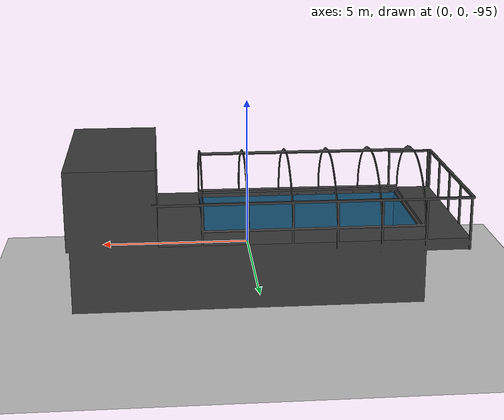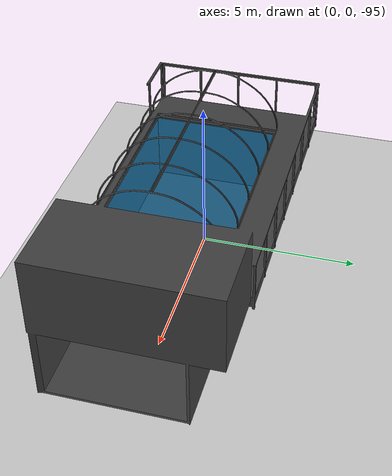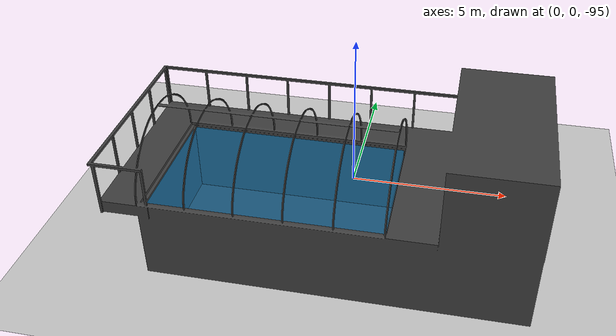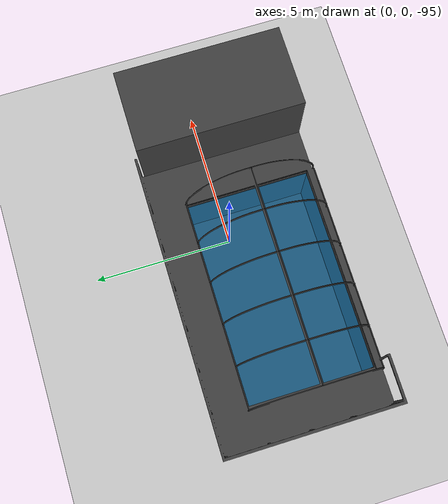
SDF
<?xml version="1.0" encoding="UTF-8"?>
<sdf version="1.9">
  <!-- Based on the KTH Water Tank Marinarium: https://www.kth.se/marinarium -->
  <world name="kth_marinarium">
    <physics type="ode">
      <max_step_size>0.004</max_step_size>
      <real_time_factor>1.0</real_time_factor>
      <real_time_update_rate>250</real_time_update_rate>
    </physics>
    <plugin name="gz::sim::systems::Physics" filename="gz-sim-physics-system"/>
    <plugin name="gz::sim::systems::UserCommands" filename="gz-sim-user-commands-system"/>
    <plugin name="gz::sim::systems::SceneBroadcaster" filename="gz-sim-scene-broadcaster-system"/>
    <plugin name="gz::sim::systems::Contact" filename="gz-sim-contact-system"/>
    <plugin name="gz::sim::systems::Imu" filename="gz-sim-imu-system"/>
    <plugin name="gz::sim::systems::AirPressure" filename="gz-sim-air-pressure-system"/>
    <plugin name="gz::sim::systems::AirSpeed" filename="gz-sim-air-speed-system"/>
    <plugin name="gz::sim::systems::ApplyLinkWrench" filename="gz-sim-apply-link-wrench-system"/>
    <plugin name="gz::sim::systems::NavSat" filename="gz-sim-navsat-system"/>
    <plugin name="gz::sim::systems::Sensors" filename="gz-sim-sensors-system">
      <render_engine>ogre2</render_engine>
    </plugin>
    <gui fullscreen="false">
      <!-- 3D scene -->
      <plugin filename="MinimalScene" name="3D View">
        <gz-gui>
          <title>3D View</title>
          <property type="bool" key="showTitleBar">false</property>
          <property type="string" key="state">docked</property>
        </gz-gui>
        <engine>ogre2</engine>
        <scene>scene</scene>
        <ambient_light>0.4 0.4 0.4</ambient_light>
        <background_color>0.8 0.8 0.8</background_color>
        <camera_pose>-6 0 6 0 0.5 0</camera_pose>
        <camera_clip>
          <near>0.25</near>
          <far>25000</far>
        </camera_clip>
      </plugin>
      <!-- Plugins that add functionality to the scene -->
      <plugin filename="EntityContextMenuPlugin" name="Entity context menu">
        <gz-gui>
          <property key="state" type="string">floating</property>
          <property key="width" type="double">5</property>
          <property key="height" type="double">5</property>
          <property key="showTitleBar" type="bool">false</property>
        </gz-gui>
      </plugin>
      <plugin filename="GzSceneManager" name="Scene Manager">
        <gz-gui>
          <property key="resizable" type="bool">false</property>
          <property key="width" type="double">5</property>
          <property key="height" type="double">5</property>
          <property key="state" type="string">floating</property>
          <property key="showTitleBar" type="bool">false</property>
        </gz-gui>
      </plugin>
      <plugin filename="InteractiveViewControl" name="Interactive view control">
        <gz-gui>
          <property key="resizable" type="bool">false</property>
          <property key="width" type="double">5</property>
          <property key="height" type="double">5</property>
          <property key="state" type="string">floating</property>
          <property key="showTitleBar" type="bool">false</property>
        </gz-gui>
      </plugin>
      <plugin filename="CameraTracking" name="Camera Tracking">
        <gz-gui>
          <property key="resizable" type="bool">false</property>
          <property key="width" type="double">5</property>
          <property key="height" type="double">5</property>
          <property key="state" type="string">floating</property>
          <property key="showTitleBar" type="bool">false</property>
        </gz-gui>
      </plugin>
      <plugin filename="MarkerManager" name="Marker manager">
        <gz-gui>
          <property key="resizable" type="bool">false</property>
          <property key="width" type="double">5</property>
          <property key="height" type="double">5</property>
          <property key="state" type="string">floating</property>
          <property key="showTitleBar" type="bool">false</property>
        </gz-gui>
      </plugin>
      <plugin filename="SelectEntities" name="Select Entities">
        <gz-gui>
          <anchors target="Select entities">
            <line own="right" target="right"/>
            <line own="top" target="top"/>
          </anchors>
          <property key="resizable" type="bool">false</property>
          <property key="width" type="double">5</property>
          <property key="height" type="double">5</property>
          <property key="state" type="string">floating</property>
          <property key="showTitleBar" type="bool">false</property>
        </gz-gui>
      </plugin>
      <plugin filename="VisualizationCapabilities" name="Visualization Capabilities">
        <gz-gui>
          <property key="resizable" type="bool">false</property>
          <property key="width" type="double">5</property>
          <property key="height" type="double">5</property>
          <property key="state" type="string">floating</property>
          <property key="showTitleBar" type="bool">false</property>
        </gz-gui>
      </plugin>
      <plugin filename="Spawn" name="Spawn Entities">
        <gz-gui>
          <anchors target="Select entities">
            <line own="right" target="right"/>
            <line own="top" target="top"/>
          </anchors>
          <property key="resizable" type="bool">false</property>
          <property key="width" type="double">5</property>
          <property key="height" type="double">5</property>
          <property key="state" type="string">floating</property>
          <property key="showTitleBar" type="bool">false</property>
        </gz-gui>
      </plugin>
      <plugin name="World control" filename="WorldControl">
        <gz-gui>
          <title>World control</title>
          <property type="bool" key="showTitleBar">0</property>
          <property type="bool" key="resizable">0</property>
          <property type="double" key="height">72</property>
          <property type="double" key="width">121</property>
          <property type="double" key="z">1</property>
          <property type="string" key="state">floating</property>
          <anchors target="3D View">
            <line own="left" target="left"/>
            <line own="bottom" target="bottom"/>
          </anchors>
        </gz-gui>
        <play_pause>1</play_pause>
        <step>1</step>
        <start_paused>1</start_paused>
      </plugin>
      <plugin name="World stats" filename="WorldStats">
        <gz-gui>
          <title>World stats</title>
          <property type="bool" key="showTitleBar">0</property>
          <property type="bool" key="resizable">0</property>
          <property type="double" key="height">110</property>
          <property type="double" key="width">290</property>
          <property type="double" key="z">1</property>
          <property type="string" key="state">floating</property>
          <anchors target="3D View">
            <line own="right" target="right"/>
            <line own="bottom" target="bottom"/>
          </anchors>
        </gz-gui>
        <sim_time>1</sim_time>
        <real_time>1</real_time>
        <real_time_factor>1</real_time_factor>
        <iterations>1</iterations>
      </plugin>
      <plugin name="Entity tree" filename="EntityTree"/>
    </gui>
    <gravity>0 0 -9.8</gravity>
    <magnetic_field>6e-06 2.3e-05 -4.2e-05</magnetic_field>
    <atmosphere type="adiabatic"/>
    <scene>
      <grid>false</grid>
      <ambient>0.4 0.4 0.4 1</ambient>
      <background>0.7 0.7 0.7 1</background>
      <shadows>true</shadows>
    </scene>
    <light name="sunUTC" type="directional">
      <pose>0 0 500 0 -0 0</pose>
      <cast_shadows>true</cast_shadows>
      <intensity>1</intensity>
      <direction>0.001 0.625 -0.78</direction>
      <diffuse>0.904 0.904 0.904 1</diffuse>
      <specular>0.271 0.271 0.271 1</specular>
      <attenuation>
        <range>2000</range>
        <linear>0</linear>
        <constant>1</constant>
        <quadratic>0</quadratic>
      </attenuation>
      <spot>
        <inner_angle>0</inner_angle>
        <outer_angle>0</outer_angle>
        <falloff>0</falloff>
      </spot>
    </light>
    <spherical_coordinates>
      <surface_model>EARTH_WGS84</surface_model>
      <world_frame_orientation>ENU</world_frame_orientation>
      <latitude_deg>59.350941</latitude_deg>
      <longitude_deg>18.06806</longitude_deg>
      <elevation>0</elevation>
    </spherical_coordinates>
    <!-- KTH Water Tank model -->
    <include>
      <uri>model://kth_tank</uri>
      <name>kth_tank</name>
      <pose>0 0 -97.0 0 0 0</pose>
      <static>true</static>
    </include>
    <!-- Ground plane to facilitate visibility -->
    <model name="ground_plane">
      <static>true</static>
      <pose>0 0 -97.0 0 0 0</pose>
      <link name="link">
        <collision name="collision">
          <geometry>
            <plane>
              <normal>0 0 1</normal>
              <size>200 200</size>
            </plane>
          </geometry>
        </collision>
        <visual name="visual">
          <geometry>
            <plane>
              <normal>0 0 1</normal>
              <size>200 200</size>
            </plane>
          </geometry>
          <material>
            <ambient>0.8 0.8 0.8 1</ambient>
            <diffuse>0.8 0.8 0.8 1</diffuse>
            <specular>0.1 0.1 0.1 1</specular>
          </material>
        </visual>
      </link>
    </model>
    <plugin filename="gz-sim-buoyancy-system" name="gz::sim::systems::Buoyancy">
      <graded_buoyancy>
        <default_density>1000</default_density>
        <!-- Tank water surface aligned with wall visual top (z=2.6) -->
        <density_change>
          <above_depth>-94.4</above_depth>
          <density>1</density>
        </density_change>
      </graded_buoyancy>
      <!-- Restrict buoyancy to just the robot link(s) -->
      <enable>uuv_bluerov2_heavy::base_link</enable>
      <!-- PX4 often spawns with a suffix like _0 -->
      <enable>uuv_bluerov2_heavy_0::base_link</enable>
    </plugin>
  </world>
</sdf>

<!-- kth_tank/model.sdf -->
<sdf version="1.6">
  <model name="kth_tank">
    <static>true</static>
    <pose>0 0 0 0 0 0</pose>

    <link name="tank_link">
      <!-- Visual representation using the OBJ mesh -->
      <visual name="visual">
        <pose>0 0 0 1.571 0 0</pose>
        <geometry>
          <mesh>
            <uri>model://kth_tank/meshes/kth_tank_complete.obj</uri>
            <scale>1 1 1</scale>
          </mesh>
        </geometry>
        <material>
          <!-- Dark grey -->
          <ambient>0.15 0.15 0.15 1</ambient>
          <diffuse>0.25 0.25 0.25 1</diffuse>
          <specular>0.05 0.05 0.05 1</specular>
        </material>
      </visual>

      <!-- Water volume visual -->
      <visual name="water_volume_visual">
        <pose>-2.175 -1.15 1.3 0 0 0</pose>
        <cast_shadows>false</cast_shadows>
        <geometry>
          <box>
            <size>7.4 4.55 2.55</size>
          </box>
        </geometry>
        <material>
          <ambient>0.0 0.3 0.5 1</ambient>
          <diffuse>0.0 0.5 0.8 1</diffuse>
          <specular>0.5 0.5 0.5 1</specular>
        </material>
        <transparency>0.5</transparency>
      </visual>

      <!-- Simple box collisions -->
      <!-- Bottom / floor (Z min) -->
      <collision name="tank_floor_box">
        <pose>-2.175 -1.15 0.17 0 0 0</pose>
        <geometry>
          <box>
            <size>7.4 4.55 0.1</size>
          </box>
        </geometry>
      </collision>

      <!-- West wall (X min / negative X) -->
      <collision name="tank_wall_x_min">
        <pose>-5.9 -1.2 1.3 0 0 0</pose>
        <geometry>
          <box>
            <size>0.05 4.8 2.5</size>
          </box>
        </geometry>
      </collision>

      <!-- East wall (X max / positive X) -->
      <collision name="tank_wall_x_max">
        <pose>1.55 -1.2 1.3 0 0 0</pose>
        <geometry>
          <box>
            <size>0.05 4.8 2.5</size>
          </box>
        </geometry>
      </collision>
      <visual name="tank_wall_x_max_visual">
        <!-- slight outward offset to avoid z-fighting -->
        <pose>1.60 -1.2 1.3 0 0 0</pose>
        <geometry>
          <box>
            <!-- slightly thicker than collision for visibility -->
            <size>0.08 4.8 2.5</size>
          </box>
        </geometry>
        <material>
          <!-- Same dark grey as tank mesh -->
          <ambient>0.15 0.15 0.15 1</ambient>
          <diffuse>0.25 0.25 0.25 1</diffuse>
          <specular>0.05 0.05 0.05 1</specular>
        </material>
      </visual>

      <!-- South wall (Y min / negative Y) -->
      <collision name="tank_wall_y_min">
        <pose>-2.2 -3.45 1.3 0 0 0</pose>
        <geometry>
          <box>
            <size>7.9 0.05 2.5</size>
          </box>
        </geometry>
      </collision>

      <!-- North wall (Y max / positive Y) -->
      <collision name="tank_wall_y_max">
        <pose>-2.2 1.15 1.3 0 0 0</pose>
        <geometry>
          <box>
            <size>7.9 0.05 2.5</size>
          </box>
        </geometry>
      </collision>

    </link>

  </model>
</sdf>
